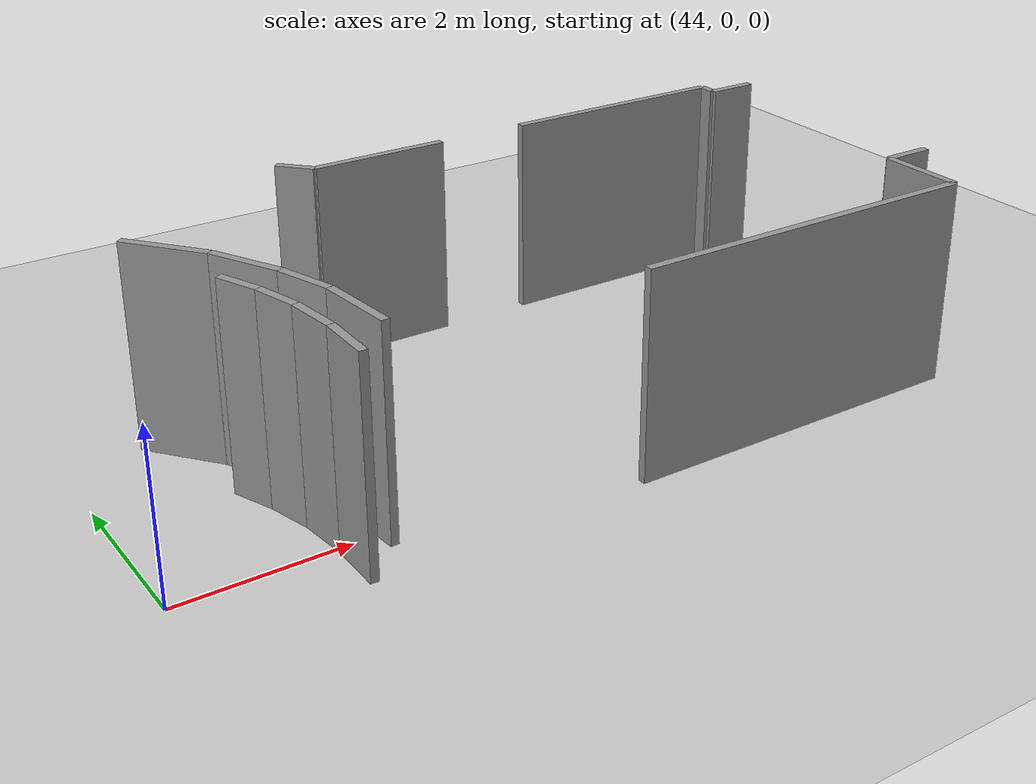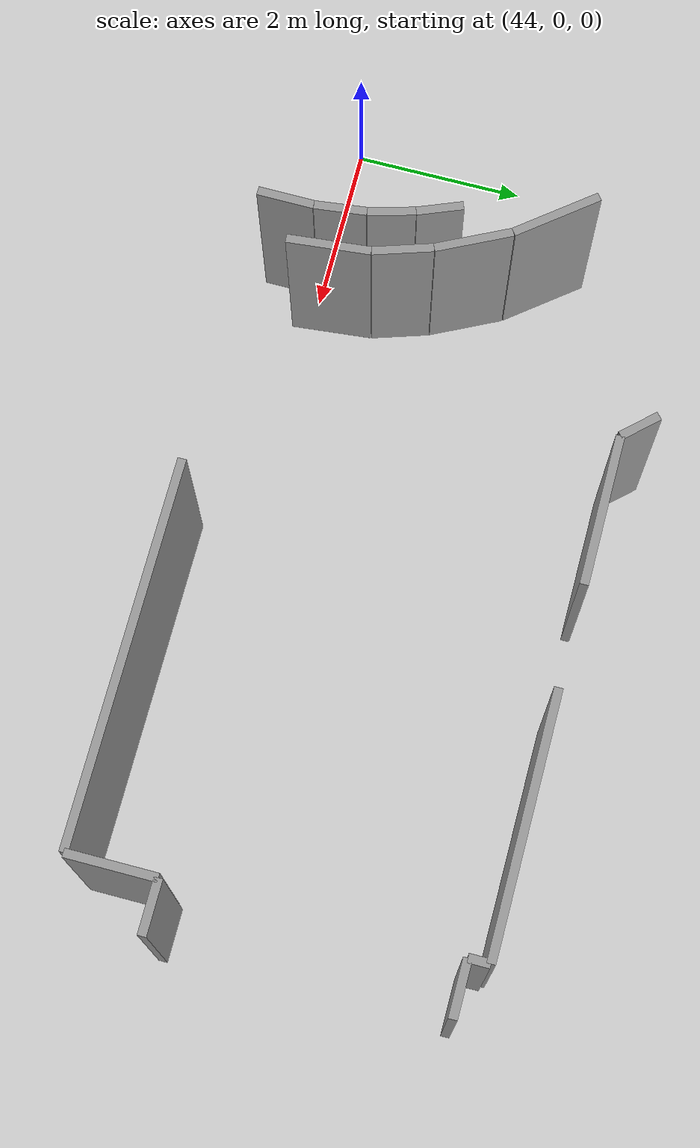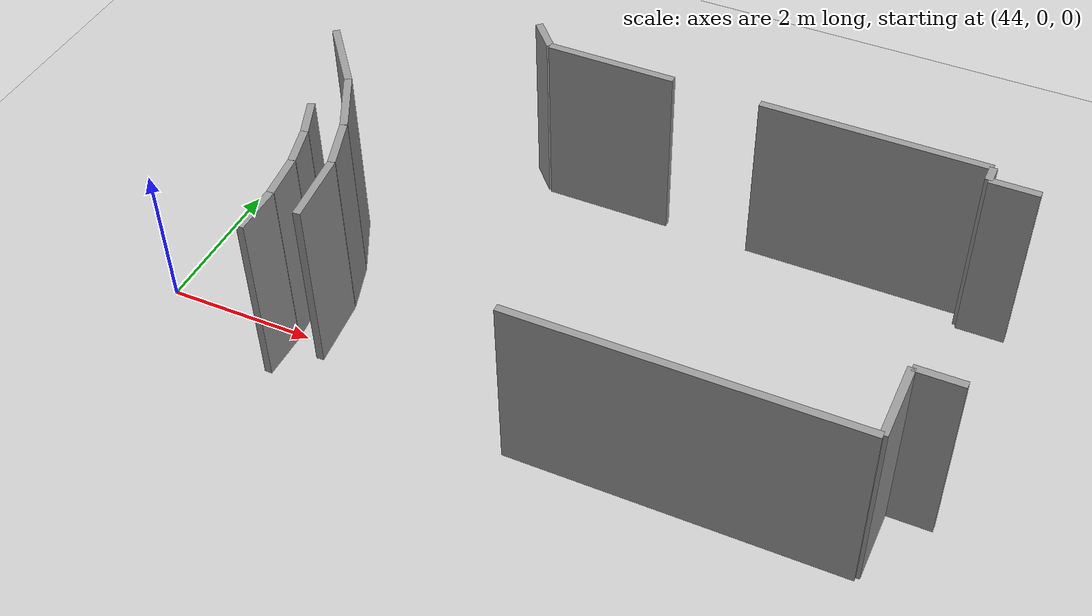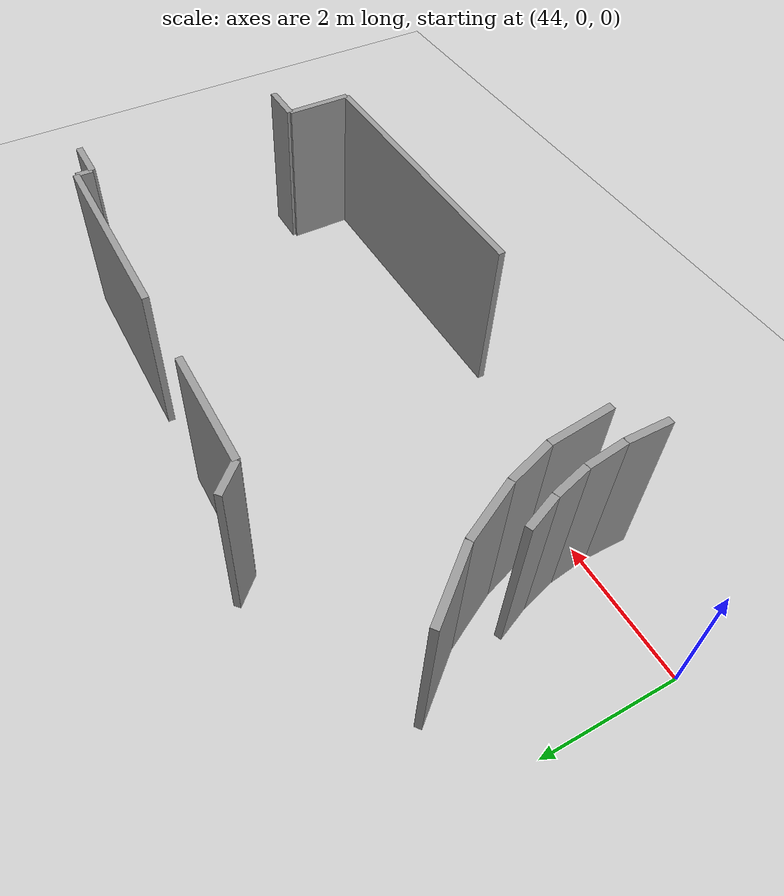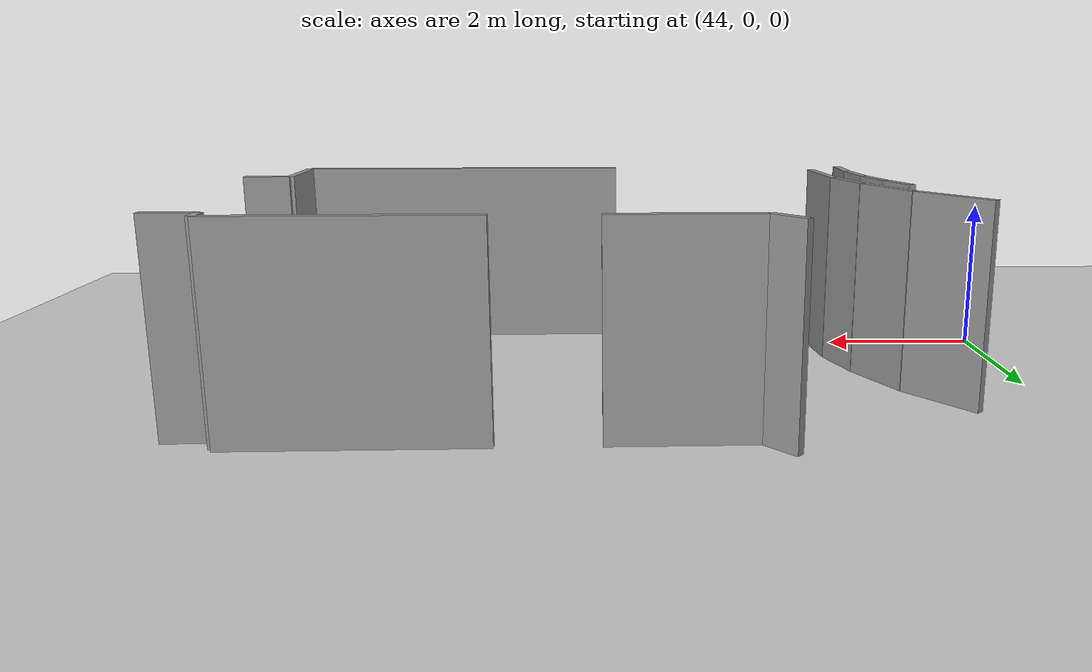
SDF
<sdf version="1.6">
 <world name="default">
  <model name="ground_plane">
   <static>1</static>
   <link name="link">
    <collision name="collision">
     <geometry><plane><normal>0 0 1</normal><size>100 100</size></plane></geometry>
     <surface><friction><ode><mu>100</mu><mu2>50</mu2></ode></friction></surface>
    </collision>
    <visual name="visual">
     <cast_shadows>0</cast_shadows>
     <geometry><plane><normal>0 0 1</normal><size>100 100</size></plane></geometry>
     <material>
      <script><uri>file://media/materials/scripts/gazebo.material</uri><name>Gazebo/Grey</name></script>
     </material>
    </visual>
   </link>
  </model>
  <model name="50041175">
   <static>1</static>
   <link name="Wall_96">
    <collision name="Wall_96_Collision">
     <geometry><box><size>0.535921703362 0.1 2.5</size></box></geometry>
     <pose>0.267960851681 0 1.25 0 0 0</pose>
    </collision>
    <visual name="Wall_96_Visual">
     <pose>0.267960851681 0 1.25 0 0 0</pose>
     <geometry><box><size>0.535921703362 0.1 2.5</size></box></geometry>
     <material>
      <script><uri>file://media/materials/scripts/gazebo.material</uri><name>Gazebo/Grey</name></script>
      <ambient>1 1 1 1</ambient>
     </material>
    </visual>
    <pose>99.4884536685 -6.76499370893 0 0 0 -1.18698716092</pose>
   </link>
   <link name="Wall_97">
    <collision name="Wall_97_Collision">
     <geometry><box><size>0.549456571481 0.1 2.5</size></box></geometry>
     <pose>0.27472828574 0 1.25 0 0 0</pose>
    </collision>
    <visual name="Wall_97_Visual">
     <pose>0.27472828574 0 1.25 0 0 0</pose>
     <geometry><box><size>0.549456571481 0.1 2.5</size></box></geometry>
     <material>
      <script><uri>file://media/materials/scripts/gazebo.material</uri><name>Gazebo/Grey</name></script>
      <ambient>1 1 1 1</ambient>
     </material>
    </visual>
    <pose>99.6891323412 -7.26192443094 0 0 0 -1.30634980588</pose>
   </link>
   <link name="Wall_98">
    <collision name="Wall_98_Collision">
     <geometry><box><size>0.6014324766 0.1 2.5</size></box></geometry>
     <pose>0.3007162383 0 1.25 0 0 0</pose>
    </collision>
    <visual name="Wall_98_Visual">
     <pose>0.3007162383 0 1.25 0 0 0</pose>
     <geometry><box><size>0.6014324766 0.1 2.5</size></box></geometry>
     <material>
      <script><uri>file://media/materials/scripts/gazebo.material</uri><name>Gazebo/Grey</name></script>
      <ambient>1 1 1 1</ambient>
     </material>
    </visual>
    <pose>99.8327465908 -7.79228041635 0 0 0 -1.45218146631</pose>
   </link>
   <link name="Wall_99">
    <collision name="Wall_99_Collision">
     <geometry><box><size>0.653909419877 0.1 2.5</size></box></geometry>
     <pose>0.326954709938 0 1.25 0 0 0</pose>
    </collision>
    <visual name="Wall_99_Visual">
     <pose>0.326954709938 0 1.25 0 0 0</pose>
     <geometry><box><size>0.653909419877 0.1 2.5</size></box></geometry>
     <material>
      <script><uri>file://media/materials/scripts/gazebo.material</uri><name>Gazebo/Grey</name></script>
      <ambient>1 1 1 1</ambient>
     </material>
    </visual>
    <pose>99.9039182543 -8.38948692856 0 0 0 -1.57857070855</pose>
   </link>
   <link name="Wall_127">
    <collision name="Wall_127_Collision">
     <geometry><box><size>0.964144506558 0.1 2.5</size></box></geometry>
     <pose>0.482072253279 0 1.25 0 0 0</pose>
    </collision>
    <visual name="Wall_127_Visual">
     <pose>0.482072253279 0 1.25 0 0 0</pose>
     <geometry><box><size>0.964144506558 0.1 2.5</size></box></geometry>
     <material>
      <script><uri>file://media/materials/scripts/gazebo.material</uri><name>Gazebo/Grey</name></script>
      <ambient>1 1 1 1</ambient>
     </material>
    </visual>
    <pose>100.376701448 -8.58355680388 0 0 0 1.66849751068</pose>
   </link>
   <link name="Wall_128">
    <collision name="Wall_128_Collision">
     <geometry><box><size>0.699046240861 0.1 2.5</size></box></geometry>
     <pose>0.349523120431 0 1.25 0 0 0</pose>
    </collision>
    <visual name="Wall_128_Visual">
     <pose>0.349523120431 0 1.25 0 0 0</pose>
     <geometry><box><size>0.699046240861 0.1 2.5</size></box></geometry>
     <material>
      <script><uri>file://media/materials/scripts/gazebo.material</uri><name>Gazebo/Grey</name></script>
      <ambient>1 1 1 1</ambient>
     </material>
    </visual>
    <pose>100.282653178 -7.62401026905 0 0 0 1.88501525795</pose>
   </link>
   <link name="Wall_129">
    <collision name="Wall_129_Collision">
     <geometry><box><size>0.906556689825 0.1 2.5</size></box></geometry>
     <pose>0.453278344913 0 1.25 0 0 0</pose>
    </collision>
    <visual name="Wall_129_Visual">
     <pose>0.453278344913 0 1.25 0 0 0</pose>
     <geometry><box><size>0.906556689825 0.1 2.5</size></box></geometry>
     <material>
      <script><uri>file://media/materials/scripts/gazebo.material</uri><name>Gazebo/Grey</name></script>
      <ambient>1 1 1 1</ambient>
     </material>
    </visual>
    <pose>100.066596342 -6.95919067651 0 0 0 2.03538437439</pose>
   </link>
   <link name="Wall_130">
    <collision name="Wall_130_Collision">
     <geometry><box><size>1.06310473111 0.1 2.5</size></box></geometry>
     <pose>0.531552365554 0 1.25 0 0 0</pose>
    </collision>
    <visual name="Wall_130_Visual">
     <pose>0.531552365554 0 1.25 0 0 0</pose>
     <geometry><box><size>1.06310473111 0.1 2.5</size></box></geometry>
     <material>
      <script><uri>file://media/materials/scripts/gazebo.material</uri><name>Gazebo/Grey</name></script>
      <ambient>1 1 1 1</ambient>
     </material>
    </visual>
    <pose>99.6604094912 -6.14872335829 0 0 0 2.24454774338</pose>
   </link>
   <link name="Wall_139">
    <collision name="Wall_139_Collision">
     <geometry><box><size>0.486062601927 0.1 2.5</size></box></geometry>
     <pose>0.243031300964 0 1.25 0 0 0</pose>
    </collision>
    <visual name="Wall_139_Visual">
     <pose>0.243031300964 0 1.25 0 0 0</pose>
     <geometry><box><size>0.486062601927 0.1 2.5</size></box></geometry>
     <material>
      <script><uri>file://media/materials/scripts/gazebo.material</uri><name>Gazebo/Grey</name></script>
      <ambient>1 1 1 1</ambient>
     </material>
    </visual>
    <pose>101.366750124 -4.09796271113 0 0 0 -0.826825225258</pose>
   </link>
   <link name="Wall_140">
    <collision name="Wall_140_Collision">
     <geometry><box><size>1.72972560782 0.1 2.5</size></box></geometry>
     <pose>0.864862803909 0 1.25 0 0 0</pose>
    </collision>
    <visual name="Wall_140_Visual">
     <pose>0.864862803909 0 1.25 0 0 0</pose>
     <geometry><box><size>1.72972560782 0.1 2.5</size></box></geometry>
     <material>
      <script><uri>file://media/materials/scripts/gazebo.material</uri><name>Gazebo/Grey</name></script>
      <ambient>1 1 1 1</ambient>
     </material>
    </visual>
    <pose>101.695919068 -4.45560032027 0 0 0 0.0</pose>
   </link>
   <link name="Wall_141">
    <collision name="Wall_141_Collision">
     <geometry><box><size>2.96506233875 0.1 2.5</size></box></geometry>
     <pose>1.48253116938 0 1.25 0 0 0</pose>
    </collision>
    <visual name="Wall_141_Visual">
     <pose>1.48253116938 0 1.25 0 0 0</pose>
     <geometry><box><size>2.96506233875 0.1 2.5</size></box></geometry>
     <material>
      <script><uri>file://media/materials/scripts/gazebo.material</uri><name>Gazebo/Grey</name></script>
      <ambient>1 1 1 1</ambient>
     </material>
    </visual>
    <pose>104.585996975 -4.45560032027 0 0 0 0.0</pose>
   </link>
   <link name="Wall_142">
    <collision name="Wall_142_Collision">
     <geometry><box><size>0.242237840448 0.1 2.5</size></box></geometry>
     <pose>0.121118920224 0 1.25 0 0 0</pose>
    </collision>
    <visual name="Wall_142_Visual">
     <pose>0.121118920224 0 1.25 0 0 0</pose>
     <geometry><box><size>0.242237840448 0.1 2.5</size></box></geometry>
     <material>
      <script><uri>file://media/materials/scripts/gazebo.material</uri><name>Gazebo/Grey</name></script>
      <ambient>1 1 1 1</ambient>
     </material>
    </visual>
    <pose>107.551059314 -4.45560032027 0 0 0 -1.57079632679</pose>
   </link>
   <link name="Wall_143">
    <collision name="Wall_143_Collision">
     <geometry><box><size>0.635461281344 0.1 2.5</size></box></geometry>
     <pose>0.317730640672 0 1.25 0 0 0</pose>
    </collision>
    <visual name="Wall_143_Visual">
     <pose>0.317730640672 0 1.25 0 0 0</pose>
     <geometry><box><size>0.635461281344 0.1 2.5</size></box></geometry>
     <material>
      <script><uri>file://media/materials/scripts/gazebo.material</uri><name>Gazebo/Grey</name></script>
      <ambient>1 1 1 1</ambient>
     </material>
    </visual>
    <pose>107.551059314 -4.69783816072 0 0 0 0.0</pose>
   </link>
   <link name="Wall_144">
    <collision name="Wall_144_Collision">
     <geometry><box><size>0.613855597778 0.1 2.5</size></box></geometry>
     <pose>0.306927798889 0 1.25 0 0 0</pose>
    </collision>
    <visual name="Wall_144_Visual">
     <pose>0.306927798889 0 1.25 0 0 0</pose>
     <geometry><box><size>0.613855597778 0.1 2.5</size></box></geometry>
     <material>
      <script><uri>file://media/materials/scripts/gazebo.material</uri><name>Gazebo/Grey</name></script>
      <ambient>1 1 1 1</ambient>
     </material>
    </visual>
    <pose>108.186520595 -7.96283822427 0 0 0 3.14159265359</pose>
   </link>
   <link name="Wall_145">
    <collision name="Wall_145_Collision">
     <geometry><box><size>1.02093209461 0.1 2.5</size></box></geometry>
     <pose>0.510466047304 0 1.25 0 0 0</pose>
    </collision>
    <visual name="Wall_145_Visual">
     <pose>0.510466047304 0 1.25 0 0 0</pose>
     <geometry><box><size>1.02093209461 0.1 2.5</size></box></geometry>
     <material>
      <script><uri>file://media/materials/scripts/gazebo.material</uri><name>Gazebo/Grey</name></script>
      <ambient>1 1 1 1</ambient>
     </material>
    </visual>
    <pose>107.572664998 -7.96283822427 0 0 0 -1.57079632679</pose>
   </link>
   <link name="Wall_146">
    <collision name="Wall_146_Collision">
     <geometry><box><size>4.41391406022 0.1 2.5</size></box></geometry>
     <pose>2.20695703011 0 1.25 0 0 0</pose>
    </collision>
    <visual name="Wall_146_Visual">
     <pose>2.20695703011 0 1.25 0 0 0</pose>
     <geometry><box><size>4.41391406022 0.1 2.5</size></box></geometry>
     <material>
      <script><uri>file://media/materials/scripts/gazebo.material</uri><name>Gazebo/Grey</name></script>
      <ambient>1 1 1 1</ambient>
     </material>
    </visual>
    <pose>107.572664998 -8.98377031887 0 0 0 3.14159265359</pose>
   </link>
   <pose>-54.05 8.33479849523 0 0 0 0</pose>
  </model>
 </world>
</sdf>
